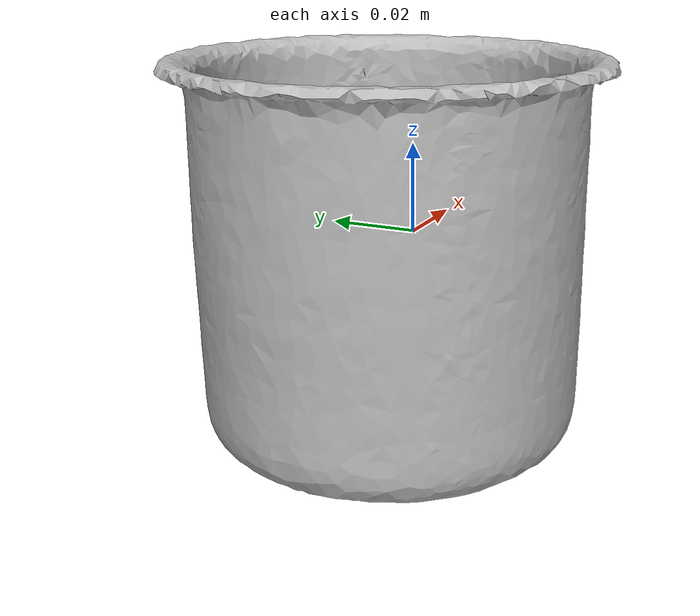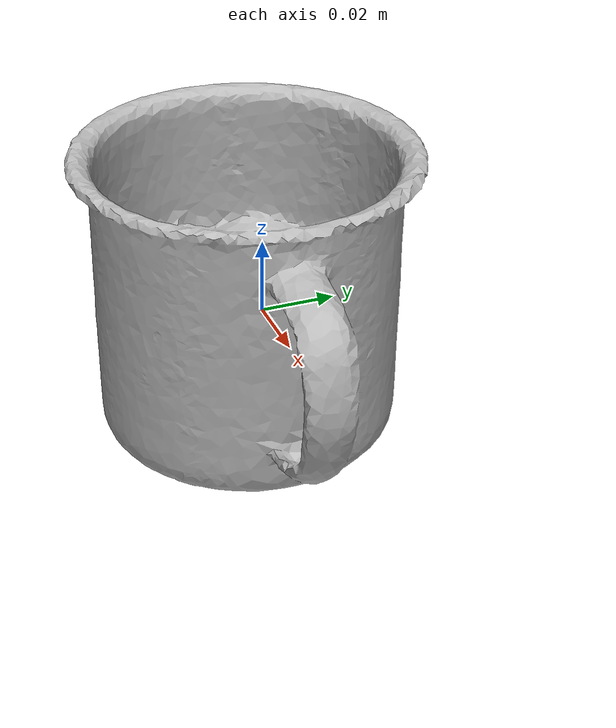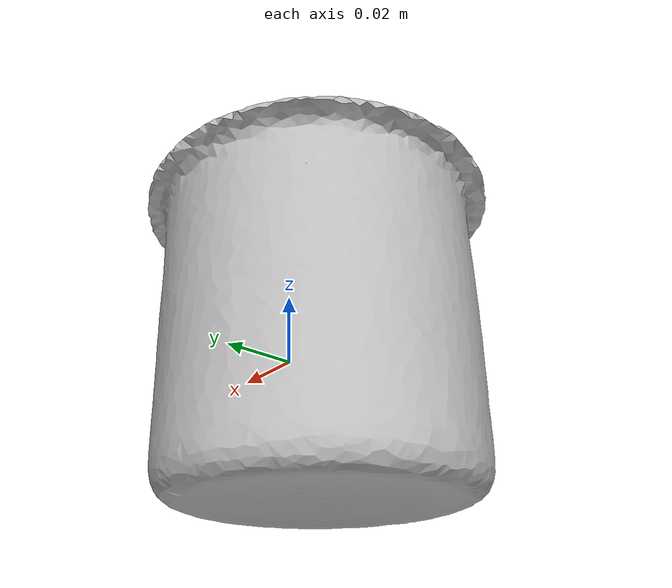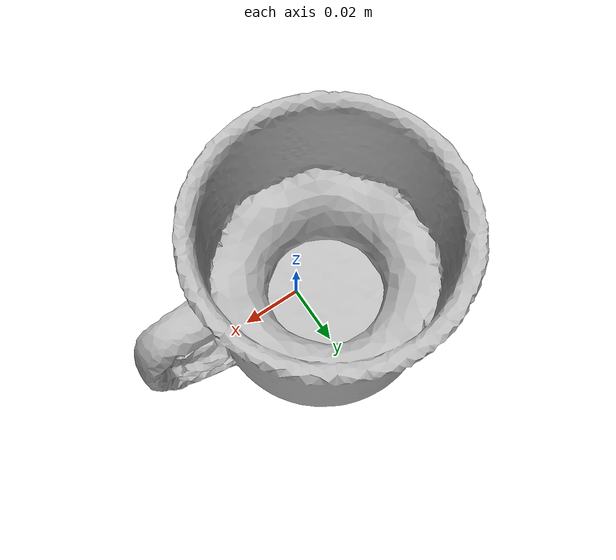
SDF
<?xml version="1.0" ?>
<sdf version="1.7">
<!--
This SDF file was automatically generated using a template modified
and authored by Jinjian Li. The moment of interia is not supposed to be changed.
-->
    <model name="obj_000014">
      <pose>0.0 0.0 0.0 0.0 0.0 0.0</pose>
      <link name="link">
        <inertial>
          <inertia>
           <ixx>0.0001772657330653257</ixx>
           <ixy>1.1056157114460863e-06</ixy>
           <ixz>-4.8929695145957654e-06</ixz>
           <iyy>0.0002009405170746809</iyy>
           <iyz>-4.387373571387836e-06</iyz>
           <izz>0.00025710499694543313</izz>
          </inertia>
          <mass>0.20645792990727896</mass>
        </inertial>
        <collision name="collision">
          <geometry>
            <mesh>
             <uri>obj_000014.obj</uri>
             <scale>1 1 1</scale>
            </mesh>
          </geometry>
        </collision>

        <visual name="visual">
          <geometry>
            <mesh>
             <uri>obj_000014.obj</uri>
             <scale>1 1 1</scale>
            </mesh>
          </geometry>
        </visual>
      </link>
    </model>
</sdf>
